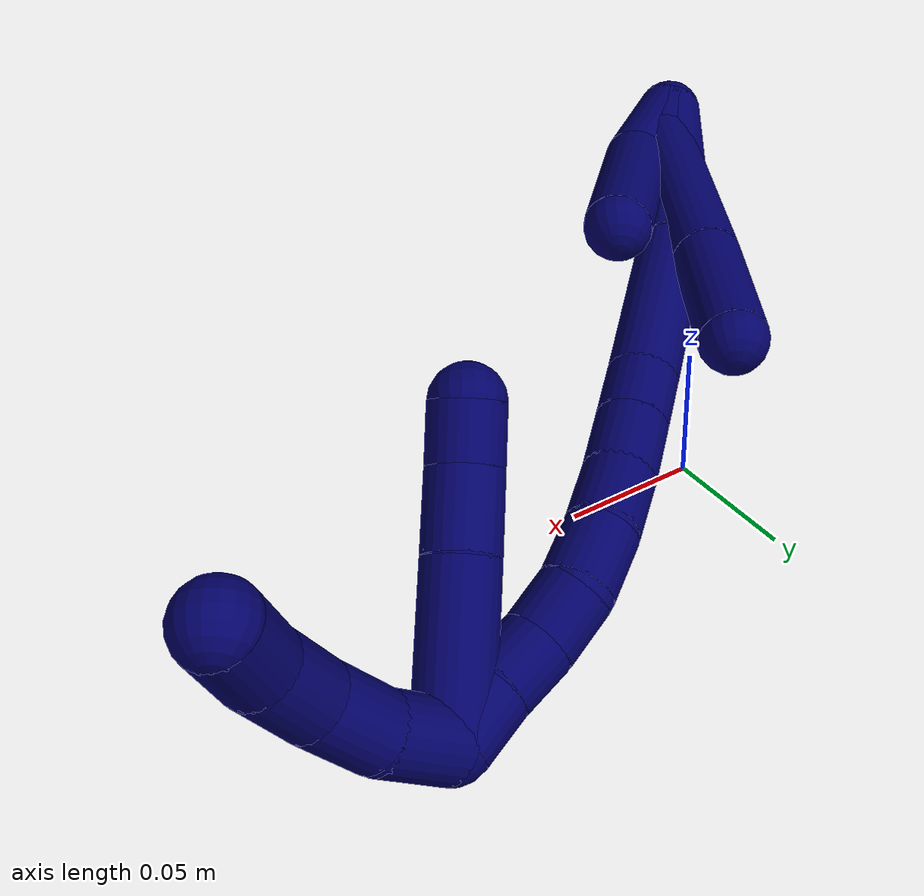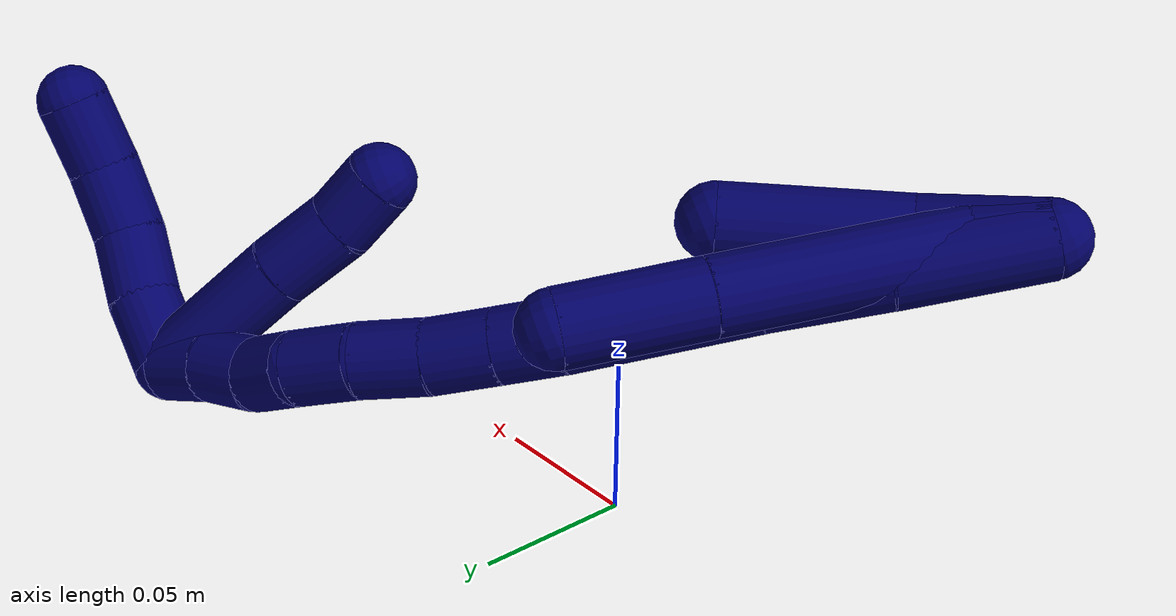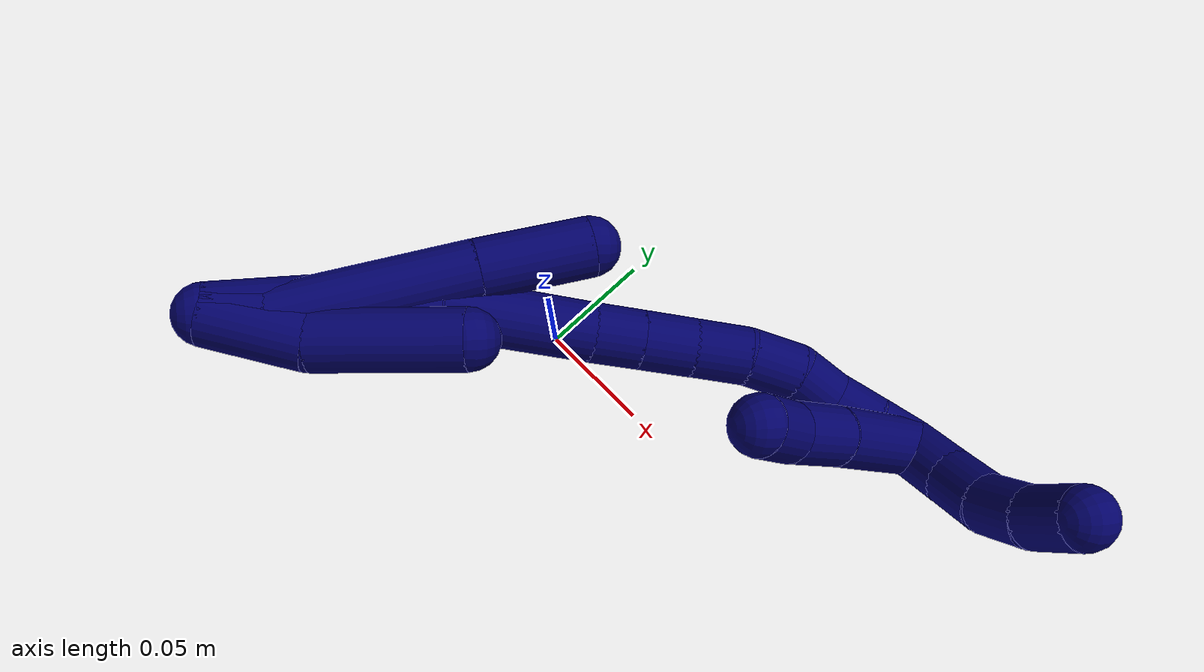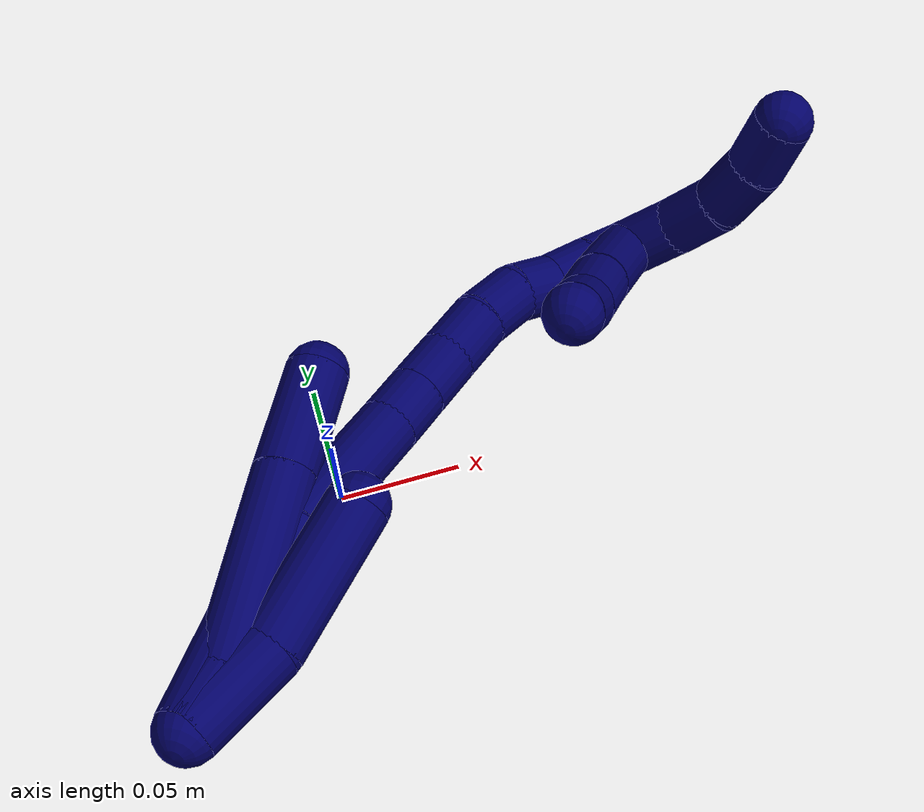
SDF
<sdf version="1.7">
 <world name="default">
  <model name="photoneo_s_sensor">
   <static>1</static>
   <pose>0 0 2 1.57079 1.57079 3.14159</pose>
   <link name="link">
    <inertial><mass>0.1</mass></inertial>
    <sensor name="sensor" type="depth">
     <update_rate>30</update_rate>
     <camera>
      <horizontal_fov>1.22</horizontal_fov>
      <image><width>1920</width><height>1200</height><format>B8G8R8</format></image>
      <clip><near>0.1</near><far>4</far></clip>
      <depth_camera><output>points</output></depth_camera>
     </camera>
     <plugin name="camera_plugin" filename="libgazebo_ros_depth_camera.so">
      <baseline>0.2</baseline>
      <alwaysOn>1</alwaysOn>
      <updateRate>0.0</updateRate>
      <cameraName>camera_ir</cameraName>
      <imageTopicName>/camera/color/image_raw</imageTopicName>
      <cameraInfoTopicName>/camera/color/camera_info</cameraInfoTopicName>
      <depthImageTopicName>/camera/depth/image_raw</depthImageTopicName>
      <depthImageCameraInfoTopicName>/camera/depth/camera_info</depthImageCameraInfoTopicName>
      <pointCloudTopicName>/camera/depth/points</pointCloudTopicName>
      <frameName>fr_optical</frameName>
      <pointCloudCutoff>0.1</pointCloudCutoff>
      <pointCloudCutoffMax>2.0</pointCloudCutoffMax>
      <distortionK1>0</distortionK1>
      <distortionK2>0</distortionK2>
      <distortionK3>0</distortionK3>
      <distortionT1>0</distortionT1>
      <distortionT2>0</distortionT2>
      <CxPrime>0</CxPrime>
      <Cx>0</Cx>
      <Cy>0</Cy>
      <focalLength>0</focalLength>
      <hackBaseline>0</hackBaseline>
     </plugin>
    </sensor>
   </link>
  </model>
  <model name="bin">
   <static>1</static>
   <link name="bottom">
    <collision name="collision-bottom">
     <pose>0 0 -0.01 0 -0 0</pose>
     <geometry><box><size>0.8 0.6 0.02</size></box></geometry>
     <surface>
      <friction><ode><mu>100</mu><mu2>100</mu2></ode></friction>
      <contact><collide_bitmask>65535</collide_bitmask></contact>
     </surface>
    </collision>
   </link>
   <link name="west_wall">
    <collision name="collision-west_wall">
     <pose>-0.41 0 0.1 0 -0 0</pose>
     <geometry><box><size>0.02 0.6 0.2</size></box></geometry>
     <surface>
      <friction><ode><mu>100</mu><mu2>100</mu2></ode></friction>
      <contact><collide_bitmask>65535</collide_bitmask></contact>
     </surface>
    </collision>
   </link>
   <link name="east_wall">
    <collision name="collision-east_wall">
     <pose>0.41 0 0.1 0 -0 0</pose>
     <geometry><box><size>0.02 0.6 0.2</size></box></geometry>
     <surface>
      <friction><ode><mu>100</mu><mu2>100</mu2></ode></friction>
      <contact><collide_bitmask>65535</collide_bitmask></contact>
     </surface>
    </collision>
   </link>
   <link name="south_wall">
    <collision name="collision-south_wall">
     <pose>0 -0.31 0.1 0 -0 0</pose>
     <geometry><box><size>0.8 0.02 0.2</size></box></geometry>
     <surface>
      <friction><ode><mu>100</mu><mu2>100</mu2></ode></friction>
      <contact><collide_bitmask>65535</collide_bitmask></contact>
     </surface>
    </collision>
   </link>
   <link name="north_wall">
    <collision name="collision-north_wall">
     <pose>0 0.31 0.1 0 -0 0</pose>
     <geometry><box><size>0.8 0.02 0.2</size></box></geometry>
     <surface>
      <friction><ode><mu>100</mu><mu2>100</mu2></ode></friction>
      <contact><collide_bitmask>65535</collide_bitmask></contact>
     </surface>
    </collision>
   </link>
  </model>
  <model name="7">
   <static>0</static>
   <link name="7">
    <collision name="collision-cylinder-e_1_2_8">
     <pose>0.001123 0.003477 -0.011085 -2.83764 0.096388 -0.61016</pose>
     <geometry><cylinder><radius>0.0125</radius><length>0.023344</length></cylinder></geometry>
     <surface>
      <friction><ode><mu>1.16</mu><mu2>1.16</mu2><slip1>0</slip1><slip2>0</slip2></ode></friction>
      <contact><ode><kp>1e+06</kp><kd>1</kd><max_vel>0</max_vel><min_depth>0.001</min_depth></ode></contact>
     </surface>
    </collision>
    <visual name="visual-cylinder-e_1_2_8">
     <pose>0.001123 0.003477 -0.011085 -2.83764 0.096388 -0.61016</pose>
     <geometry><cylinder><radius>0.0125</radius><length>0.023344</length></cylinder></geometry>
     <material><ambient>0.003922 0 0.403922 1</ambient></material>
    </visual>
    <collision name="collision-cylinder-e_2_8_9">
     <pose>-0.005628 0.015084 -0.06082 -2.93428 -0.196808 1.51847</pose>
     <geometry><cylinder><radius>0.0125</radius><length>0.080545</length></cylinder></geometry>
     <surface>
      <friction><ode><mu>1.16</mu><mu2>1.16</mu2><slip1>0</slip1><slip2>0</slip2></ode></friction>
      <contact><ode><kp>1e+06</kp><kd>1</kd><max_vel>0</max_vel><min_depth>0.001</min_depth></ode></contact>
     </surface>
    </collision>
    <visual name="visual-cylinder-e_2_8_9">
     <pose>-0.005628 0.015084 -0.06082 -2.93428 -0.196808 1.51847</pose>
     <geometry><cylinder><radius>0.0125</radius><length>0.080545</length></cylinder></geometry>
     <material><ambient>0.003922 0 0.403922 1</ambient></material>
    </visual>
    <collision name="collision-cylinder-e_3_9_6">
     <pose>-0.017418 0.027734 -0.121736 -2.94127 -0.170627 1.41012</pose>
     <geometry><cylinder><radius>0.0125</radius><length>0.046111</length></cylinder></geometry>
     <surface>
      <friction><ode><mu>1.16</mu><mu2>1.16</mu2><slip1>0</slip1><slip2>0</slip2></ode></friction>
      <contact><ode><kp>1e+06</kp><kd>1</kd><max_vel>0</max_vel><min_depth>0.001</min_depth></ode></contact>
     </surface>
    </collision>
    <visual name="visual-cylinder-e_3_9_6">
     <pose>-0.017418 0.027734 -0.121736 -2.94127 -0.170627 1.41012</pose>
     <geometry><cylinder><radius>0.0125</radius><length>0.046111</length></cylinder></geometry>
     <material><ambient>0.003922 0 0.403922 1</ambient></material>
    </visual>
    <collision name="collision-cylinder-e_1_2_10">
     <pose>0.005599 0.007539 -0.017628 -2.73747 0.284115 -1.21898</pose>
     <geometry><cylinder><radius>0.0125</radius><length>0.039946</length></cylinder></geometry>
     <surface>
      <friction><ode><mu>1.16</mu><mu2>1.16</mu2><slip1>0</slip1><slip2>0</slip2></ode></friction>
      <contact><ode><kp>1e+06</kp><kd>1</kd><max_vel>0</max_vel><min_depth>0.001</min_depth></ode></contact>
     </surface>
    </collision>
    <visual name="visual-cylinder-e_1_2_10">
     <pose>0.005599 0.007539 -0.017628 -2.73747 0.284115 -1.21898</pose>
     <geometry><cylinder><radius>0.0125</radius><length>0.039946</length></cylinder></geometry>
     <material><ambient>0.003922 0 0.403922 1</ambient></material>
    </visual>
    <collision name="collision-cylinder-e_2_10_5">
     <pose>0.012141 0.028104 -0.062294 -2.69262 0.031444 -0.137506</pose>
     <geometry><cylinder><radius>0.0125</radius><length>0.060054</length></cylinder></geometry>
     <surface>
      <friction><ode><mu>1.16</mu><mu2>1.16</mu2><slip1>0</slip1><slip2>0</slip2></ode></friction>
      <contact><ode><kp>1e+06</kp><kd>1</kd><max_vel>0</max_vel><min_depth>0.001</min_depth></ode></contact>
     </surface>
    </collision>
    <visual name="visual-cylinder-e_2_10_5">
     <pose>0.012141 0.028104 -0.062294 -2.69262 0.031444 -0.137506</pose>
     <geometry><cylinder><radius>0.0125</radius><length>0.060054</length></cylinder></geometry>
     <material><ambient>0.003922 0 0.403922 1</ambient></material>
    </visual>
    <collision name="collision-cylinder-e_1_2_11">
     <pose>-0.00084 0.004767 -0.023838 -2.94423 -0.034534 0.345372</pose>
     <geometry><cylinder><radius>0.0125</radius><length>0.048648</length></cylinder></geometry>
     <surface>
      <friction><ode><mu>1.16</mu><mu2>1.16</mu2><slip1>0</slip1><slip2>0</slip2></ode></friction>
      <contact><ode><kp>1e+06</kp><kd>1</kd><max_vel>0</max_vel><min_depth>0.001</min_depth></ode></contact>
     </surface>
    </collision>
    <visual name="visual-cylinder-e_1_2_11">
     <pose>-0.00084 0.004767 -0.023838 -2.94423 -0.034534 0.345372</pose>
     <geometry><cylinder><radius>0.0125</radius><length>0.048648</length></cylinder></geometry>
     <material><ambient>0.003922 0 0.403922 1</ambient></material>
    </visual>
    <collision name="collision-cylinder-e_2_11_12">
     <pose>-0.000579 0.013429 -0.066586 -2.93846 0.056956 -0.54509</pose>
     <geometry><cylinder><radius>0.0125</radius><length>0.038678</length></cylinder></geometry>
     <surface>
      <friction><ode><mu>1.16</mu><mu2>1.16</mu2><slip1>0</slip1><slip2>0</slip2></ode></friction>
      <contact><ode><kp>1e+06</kp><kd>1</kd><max_vel>0</max_vel><min_depth>0.001</min_depth></ode></contact>
     </surface>
    </collision>
    <visual name="visual-cylinder-e_2_11_12">
     <pose>-0.000579 0.013429 -0.066586 -2.93846 0.056956 -0.54509</pose>
     <geometry><cylinder><radius>0.0125</radius><length>0.038678</length></cylinder></geometry>
     <material><ambient>0.003922 0 0.403922 1</ambient></material>
    </visual>
    <collision name="collision-cylinder-e_3_12_13">
     <pose>0.006883 0.021756 -0.115441 -2.99466 0.207137 -1.90931</pose>
     <geometry><cylinder><radius>0.0125</radius><length>0.061864</length></cylinder></geometry>
     <surface>
      <friction><ode><mu>1.16</mu><mu2>1.16</mu2><slip1>0</slip1><slip2>0</slip2></ode></friction>
      <contact><ode><kp>1e+06</kp><kd>1</kd><max_vel>0</max_vel><min_depth>0.001</min_depth></ode></contact>
     </surface>
    </collision>
    <visual name="visual-cylinder-e_3_12_13">
     <pose>0.006883 0.021756 -0.115441 -2.99466 0.207137 -1.90931</pose>
     <geometry><cylinder><radius>0.0125</radius><length>0.061864</length></cylinder></geometry>
     <material><ambient>0.003922 0 0.403922 1</ambient></material>
    </visual>
    <collision name="collision-cylinder-e_4_13_14">
     <pose>0.015223 0.028179 -0.155399 -2.94526 0.19136 -1.54498</pose>
     <geometry><cylinder><radius>0.0125</radius><length>0.020798</length></cylinder></geometry>
     <surface>
      <friction><ode><mu>1.16</mu><mu2>1.16</mu2><slip1>0</slip1><slip2>0</slip2></ode></friction>
      <contact><ode><kp>1e+06</kp><kd>1</kd><max_vel>0</max_vel><min_depth>0.001</min_depth></ode></contact>
     </surface>
    </collision>
    <visual name="visual-cylinder-e_4_13_14">
     <pose>0.015223 0.028179 -0.155399 -2.94526 0.19136 -1.54498</pose>
     <geometry><cylinder><radius>0.0125</radius><length>0.020798</length></cylinder></geometry>
     <material><ambient>0.003922 0 0.403922 1</ambient></material>
    </visual>
    <collision name="collision-cylinder-e_5_14_15">
     <pose>0.019403 0.032405 -0.17639 -2.94078 0.194117 -1.53668</pose>
     <geometry><cylinder><radius>0.0125</radius><length>0.022835</length></cylinder></geometry>
     <surface>
      <friction><ode><mu>1.16</mu><mu2>1.16</mu2><slip1>0</slip1><slip2>0</slip2></ode></friction>
      <contact><ode><kp>1e+06</kp><kd>1</kd><max_vel>0</max_vel><min_depth>0.001</min_depth></ode></contact>
     </surface>
    </collision>
    <visual name="visual-cylinder-e_5_14_15">
     <pose>0.019403 0.032405 -0.17639 -2.94078 0.194117 -1.53668</pose>
     <geometry><cylinder><radius>0.0125</radius><length>0.022835</length></cylinder></geometry>
     <material><ambient>0.003922 0 0.403922 1</ambient></material>
    </visual>
    <collision name="collision-cylinder-e_6_15_16">
     <pose>0.023915 0.038079 -0.198448 -2.84064 0.196535 -1.15302</pose>
     <geometry><cylinder><radius>0.0125</radius><length>0.023659</length></cylinder></geometry>
     <surface>
      <friction><ode><mu>1.16</mu><mu2>1.16</mu2><slip1>0</slip1><slip2>0</slip2></ode></friction>
      <contact><ode><kp>1e+06</kp><kd>1</kd><max_vel>0</max_vel><min_depth>0.001</min_depth></ode></contact>
     </surface>
    </collision>
    <visual name="visual-cylinder-e_6_15_16">
     <pose>0.023915 0.038079 -0.198448 -2.84064 0.196535 -1.15302</pose>
     <geometry><cylinder><radius>0.0125</radius><length>0.023659</length></cylinder></geometry>
     <material><ambient>0.003922 0 0.403922 1</ambient></material>
    </visual>
    <collision name="collision-cylinder-e_7_16_17">
     <pose>0.030167 0.043819 -0.219968 -2.92463 0.35323 -2.04579</pose>
     <geometry><cylinder><radius>0.0125</radius><length>0.022786</length></cylinder></geometry>
     <surface>
      <friction><ode><mu>1.16</mu><mu2>1.16</mu2><slip1>0</slip1><slip2>0</slip2></ode></friction>
      <contact><ode><kp>1e+06</kp><kd>1</kd><max_vel>0</max_vel><min_depth>0.001</min_depth></ode></contact>
     </surface>
    </collision>
    <visual name="visual-cylinder-e_7_16_17">
     <pose>0.030167 0.043819 -0.219968 -2.92463 0.35323 -2.04579</pose>
     <geometry><cylinder><radius>0.0125</radius><length>0.022786</length></cylinder></geometry>
     <material><ambient>0.003922 0 0.403922 1</ambient></material>
    </visual>
    <collision name="collision-cylinder-e_8_17_18">
     <pose>0.040322 0.047234 -0.238294 -3.00134 0.66253 -2.73867</pose>
     <geometry><cylinder><radius>0.0125</radius><length>0.020206</length></cylinder></geometry>
     <surface>
      <friction><ode><mu>1.16</mu><mu2>1.16</mu2><slip1>0</slip1><slip2>0</slip2></ode></friction>
      <contact><ode><kp>1e+06</kp><kd>1</kd><max_vel>0</max_vel><min_depth>0.001</min_depth></ode></contact>
     </surface>
    </collision>
    <visual name="visual-cylinder-e_8_17_18">
     <pose>0.040322 0.047234 -0.238294 -3.00134 0.66253 -2.73867</pose>
     <geometry><cylinder><radius>0.0125</radius><length>0.020206</length></cylinder></geometry>
     <material><ambient>0.003922 0 0.403922 1</ambient></material>
    </visual>
    <collision name="collision-cylinder-e_9_18_19">
     <pose>0.052109 0.052273 -0.25385 -2.66843 0.574175 -1.77202</pose>
     <geometry><cylinder><radius>0.0125</radius><length>0.02052</length></cylinder></geometry>
     <surface>
      <friction><ode><mu>1.16</mu><mu2>1.16</mu2><slip1>0</slip1><slip2>0</slip2></ode></friction>
      <contact><ode><kp>1e+06</kp><kd>1</kd><max_vel>0</max_vel><min_depth>0.001</min_depth></ode></contact>
     </surface>
    </collision>
    <visual name="visual-cylinder-e_9_18_19">
     <pose>0.052109 0.052273 -0.25385 -2.66843 0.574175 -1.77202</pose>
     <geometry><cylinder><radius>0.0125</radius><length>0.02052</length></cylinder></geometry>
     <material><ambient>0.003922 0 0.403922 1</ambient></material>
    </visual>
    <collision name="collision-cylinder-e_10_19_1">
     <pose>0.063089 0.058803 -0.26952 -2.82697 0.571026 -2.15072</pose>
     <geometry><cylinder><radius>0.0125</radius><length>0.020006</length></cylinder></geometry>
     <surface>
      <friction><ode><mu>1.16</mu><mu2>1.16</mu2><slip1>0</slip1><slip2>0</slip2></ode></friction>
      <contact><ode><kp>1e+06</kp><kd>1</kd><max_vel>0</max_vel><min_depth>0.001</min_depth></ode></contact>
     </surface>
    </collision>
    <visual name="visual-cylinder-e_10_19_1">
     <pose>0.063089 0.058803 -0.26952 -2.82697 0.571026 -2.15072</pose>
     <geometry><cylinder><radius>0.0125</radius><length>0.020006</length></cylinder></geometry>
     <material><ambient>0.003922 0 0.403922 1</ambient></material>
    </visual>
    <collision name="collision-cylinder-e_1_1_20">
     <pose>0.073877 0.073042 -0.278814 -1.68126 0.430932 -0.479556</pose>
     <geometry><cylinder><radius>0.0125</radius><length>0.025767</length></cylinder></geometry>
     <surface>
      <friction><ode><mu>1.16</mu><mu2>1.16</mu2><slip1>0</slip1><slip2>0</slip2></ode></friction>
      <contact><ode><kp>1e+06</kp><kd>1</kd><max_vel>0</max_vel><min_depth>0.001</min_depth></ode></contact>
     </surface>
    </collision>
    <visual name="visual-cylinder-e_1_1_20">
     <pose>0.073877 0.073042 -0.278814 -1.68126 0.430932 -0.479556</pose>
     <geometry><cylinder><radius>0.0125</radius><length>0.025767</length></cylinder></geometry>
     <material><ambient>0.003922 0 0.403922 1</ambient></material>
    </visual>
    <collision name="collision-cylinder-e_2_20_21">
     <pose>0.082864 0.096372 -0.278948 -1.47228 0.297659 -0.270046</pose>
     <geometry><cylinder><radius>0.0125</radius><length>0.024588</length></cylinder></geometry>
     <surface>
      <friction><ode><mu>1.16</mu><mu2>1.16</mu2><slip1>0</slip1><slip2>0</slip2></ode></friction>
      <contact><ode><kp>1e+06</kp><kd>1</kd><max_vel>0</max_vel><min_depth>0.001</min_depth></ode></contact>
     </surface>
    </collision>
    <visual name="visual-cylinder-e_2_20_21">
     <pose>0.082864 0.096372 -0.278948 -1.47228 0.297659 -0.270046</pose>
     <geometry><cylinder><radius>0.0125</radius><length>0.024588</length></cylinder></geometry>
     <material><ambient>0.003922 0 0.403922 1</ambient></material>
    </visual>
    <collision name="collision-cylinder-e_3_21_22">
     <pose>0.08711 0.120419 -0.277505 -1.54752 0.051784 -0.050593</pose>
     <geometry><cylinder><radius>0.0125</radius><length>0.02474</length></cylinder></geometry>
     <surface>
      <friction><ode><mu>1.16</mu><mu2>1.16</mu2><slip1>0</slip1><slip2>0</slip2></ode></friction>
      <contact><ode><kp>1e+06</kp><kd>1</kd><max_vel>0</max_vel><min_depth>0.001</min_depth></ode></contact>
     </surface>
    </collision>
    <visual name="visual-cylinder-e_3_21_22">
     <pose>0.08711 0.120419 -0.277505 -1.54752 0.051784 -0.050593</pose>
     <geometry><cylinder><radius>0.0125</radius><length>0.02474</length></cylinder></geometry>
     <material><ambient>0.003922 0 0.403922 1</ambient></material>
    </visual>
    <collision name="collision-cylinder-e_4_22_4">
     <pose>0.085748 0.145059 -0.27706 -1.55802 -0.161426 0.159385</pose>
     <geometry><cylinder><radius>0.0125</radius><length>0.024906</length></cylinder></geometry>
     <surface>
      <friction><ode><mu>1.16</mu><mu2>1.16</mu2><slip1>0</slip1><slip2>0</slip2></ode></friction>
      <contact><ode><kp>1e+06</kp><kd>1</kd><max_vel>0</max_vel><min_depth>0.001</min_depth></ode></contact>
     </surface>
    </collision>
    <visual name="visual-cylinder-e_4_22_4">
     <pose>0.085748 0.145059 -0.27706 -1.55802 -0.161426 0.159385</pose>
     <geometry><cylinder><radius>0.0125</radius><length>0.024906</length></cylinder></geometry>
     <material><ambient>0.003922 0 0.403922 1</ambient></material>
    </visual>
    <collision name="collision-cylinder-e_1_1_23">
     <pose>0.063294 0.069229 -0.252878 -0.307299 -0.198491 0.030839</pose>
     <geometry><cylinder><radius>0.0125</radius><length>0.052748</length></cylinder></geometry>
     <surface>
      <friction><ode><mu>1.16</mu><mu2>1.16</mu2><slip1>0</slip1><slip2>0</slip2></ode></friction>
      <contact><ode><kp>1e+06</kp><kd>1</kd><max_vel>0</max_vel><min_depth>0.001</min_depth></ode></contact>
     </surface>
    </collision>
    <visual name="visual-cylinder-e_1_1_23">
     <pose>0.063294 0.069229 -0.252878 -0.307299 -0.198491 0.030839</pose>
     <geometry><cylinder><radius>0.0125</radius><length>0.052748</length></cylinder></geometry>
     <material><ambient>0.003922 0 0.403922 1</ambient></material>
    </visual>
    <collision name="collision-cylinder-e_2_23_24">
     <pose>0.055888 0.080328 -0.215322 -0.248651 -0.16409 0.020552</pose>
     <geometry><cylinder><radius>0.0125</radius><length>0.027005</length></cylinder></geometry>
     <surface>
      <friction><ode><mu>1.16</mu><mu2>1.16</mu2><slip1>0</slip1><slip2>0</slip2></ode></friction>
      <contact><ode><kp>1e+06</kp><kd>1</kd><max_vel>0</max_vel><min_depth>0.001</min_depth></ode></contact>
     </surface>
    </collision>
    <visual name="visual-cylinder-e_2_23_24">
     <pose>0.055888 0.080328 -0.215322 -0.248651 -0.16409 0.020552</pose>
     <geometry><cylinder><radius>0.0125</radius><length>0.027005</length></cylinder></geometry>
     <material><ambient>0.003922 0 0.403922 1</ambient></material>
    </visual>
    <collision name="collision-cylinder-e_3_24_3">
     <pose>0.051317 0.087704 -0.19346 -0.42932 -0.235835 0.051645</pose>
     <geometry><cylinder><radius>0.0125</radius><length>0.020246</length></cylinder></geometry>
     <surface>
      <friction><ode><mu>1.16</mu><mu2>1.16</mu2><slip1>0</slip1><slip2>0</slip2></ode></friction>
      <contact><ode><kp>1e+06</kp><kd>1</kd><max_vel>0</max_vel><min_depth>0.001</min_depth></ode></contact>
     </surface>
    </collision>
    <visual name="visual-cylinder-e_3_24_3">
     <pose>0.051317 0.087704 -0.19346 -0.42932 -0.235835 0.051645</pose>
     <geometry><cylinder><radius>0.0125</radius><length>0.020246</length></cylinder></geometry>
     <material><ambient>0.003922 0 0.403922 1</ambient></material>
    </visual>
    <collision name="collision-sphere-3">
     <pose>0.048951 0.091801 -0.184511 0 -0 0</pose>
     <geometry><sphere><radius>0.0125</radius></sphere></geometry>
     <surface>
      <friction><ode><mu>1.16</mu><mu2>1.16</mu2><slip1>0</slip1><slip2>0</slip2></ode></friction>
      <contact><ode><kp>1e+06</kp><kd>1</kd><max_vel>0</max_vel><min_depth>0.001</min_depth></ode></contact>
     </surface>
    </collision>
    <visual name="visual-sphere-3">
     <pose>0.048951 0.091801 -0.184511 0 -0 0</pose>
     <geometry><sphere><radius>0.0125</radius></sphere></geometry>
     <material><ambient>0.003922 0 0.403922 1</ambient></material>
    </visual>
    <collision name="collision-sphere-24">
     <pose>0.053682 0.083607 -0.20241 0 -0 0</pose>
     <geometry><sphere><radius>0.0125</radius></sphere></geometry>
     <surface>
      <friction><ode><mu>1.16</mu><mu2>1.16</mu2><slip1>0</slip1><slip2>0</slip2></ode></friction>
      <contact><ode><kp>1e+06</kp><kd>1</kd><max_vel>0</max_vel><min_depth>0.001</min_depth></ode></contact>
     </surface>
    </collision>
    <visual name="visual-sphere-24">
     <pose>0.053682 0.083607 -0.20241 0 -0 0</pose>
     <geometry><sphere><radius>0.0125</radius></sphere></geometry>
     <material><ambient>0.003922 0 0.403922 1</ambient></material>
    </visual>
    <collision name="collision-sphere-23">
     <pose>0.058094 0.07705 -0.228233 0 -0 0</pose>
     <geometry><sphere><radius>0.0125</radius></sphere></geometry>
     <surface>
      <friction><ode><mu>1.16</mu><mu2>1.16</mu2><slip1>0</slip1><slip2>0</slip2></ode></friction>
      <contact><ode><kp>1e+06</kp><kd>1</kd><max_vel>0</max_vel><min_depth>0.001</min_depth></ode></contact>
     </surface>
    </collision>
    <visual name="visual-sphere-23">
     <pose>0.058094 0.07705 -0.228233 0 -0 0</pose>
     <geometry><sphere><radius>0.0125</radius></sphere></geometry>
     <material><ambient>0.003922 0 0.403922 1</ambient></material>
    </visual>
    <collision name="collision-sphere-4">
     <pose>0.083747 0.157349 -0.276903 0 -0 0</pose>
     <geometry><sphere><radius>0.0125</radius></sphere></geometry>
     <surface>
      <friction><ode><mu>1.16</mu><mu2>1.16</mu2><slip1>0</slip1><slip2>0</slip2></ode></friction>
      <contact><ode><kp>1e+06</kp><kd>1</kd><max_vel>0</max_vel><min_depth>0.001</min_depth></ode></contact>
     </surface>
    </collision>
    <visual name="visual-sphere-4">
     <pose>0.083747 0.157349 -0.276903 0 -0 0</pose>
     <geometry><sphere><radius>0.0125</radius></sphere></geometry>
     <material><ambient>0.003922 0 0.403922 1</ambient></material>
    </visual>
    <collision name="collision-sphere-22">
     <pose>0.08775 0.132769 -0.277217 0 -0 0</pose>
     <geometry><sphere><radius>0.0125</radius></sphere></geometry>
     <surface>
      <friction><ode><mu>1.16</mu><mu2>1.16</mu2><slip1>0</slip1><slip2>0</slip2></ode></friction>
      <contact><ode><kp>1e+06</kp><kd>1</kd><max_vel>0</max_vel><min_depth>0.001</min_depth></ode></contact>
     </surface>
    </collision>
    <visual name="visual-sphere-22">
     <pose>0.08775 0.132769 -0.277217 0 -0 0</pose>
     <geometry><sphere><radius>0.0125</radius></sphere></geometry>
     <material><ambient>0.003922 0 0.403922 1</ambient></material>
    </visual>
    <collision name="collision-sphere-21">
     <pose>0.086469 0.108069 -0.277792 0 -0 0</pose>
     <geometry><sphere><radius>0.0125</radius></sphere></geometry>
     <surface>
      <friction><ode><mu>1.16</mu><mu2>1.16</mu2><slip1>0</slip1><slip2>0</slip2></ode></friction>
      <contact><ode><kp>1e+06</kp><kd>1</kd><max_vel>0</max_vel><min_depth>0.001</min_depth></ode></contact>
     </surface>
    </collision>
    <visual name="visual-sphere-21">
     <pose>0.086469 0.108069 -0.277792 0 -0 0</pose>
     <geometry><sphere><radius>0.0125</radius></sphere></geometry>
     <material><ambient>0.003922 0 0.403922 1</ambient></material>
    </visual>
    <collision name="collision-sphere-20">
     <pose>0.079258 0.084676 -0.280104 0 -0 0</pose>
     <geometry><sphere><radius>0.0125</radius></sphere></geometry>
     <surface>
      <friction><ode><mu>1.16</mu><mu2>1.16</mu2><slip1>0</slip1><slip2>0</slip2></ode></friction>
      <contact><ode><kp>1e+06</kp><kd>1</kd><max_vel>0</max_vel><min_depth>0.001</min_depth></ode></contact>
     </surface>
    </collision>
    <visual name="visual-sphere-20">
     <pose>0.079258 0.084676 -0.280104 0 -0 0</pose>
     <geometry><sphere><radius>0.0125</radius></sphere></geometry>
     <material><ambient>0.003922 0 0.403922 1</ambient></material>
    </visual>
    <collision name="collision-sphere-5">
     <pose>0.013085 0.04113 -0.089331 0 -0 0</pose>
     <geometry><sphere><radius>0.0125</radius></sphere></geometry>
     <surface>
      <friction><ode><mu>1.16</mu><mu2>1.16</mu2><slip1>0</slip1><slip2>0</slip2></ode></friction>
      <contact><ode><kp>1e+06</kp><kd>1</kd><max_vel>0</max_vel><min_depth>0.001</min_depth></ode></contact>
     </surface>
    </collision>
    <visual name="visual-sphere-5">
     <pose>0.013085 0.04113 -0.089331 0 -0 0</pose>
     <geometry><sphere><radius>0.0125</radius></sphere></geometry>
     <material><ambient>0.003922 0 0.403922 1</ambient></material>
    </visual>
    <collision name="collision-sphere-10">
     <pose>0.011197 0.015077 -0.035256 0 -0 0</pose>
     <geometry><sphere><radius>0.0125</radius></sphere></geometry>
     <surface>
      <friction><ode><mu>1.16</mu><mu2>1.16</mu2><slip1>0</slip1><slip2>0</slip2></ode></friction>
      <contact><ode><kp>1e+06</kp><kd>1</kd><max_vel>0</max_vel><min_depth>0.001</min_depth></ode></contact>
     </surface>
    </collision>
    <visual name="visual-sphere-10">
     <pose>0.011197 0.015077 -0.035256 0 -0 0</pose>
     <geometry><sphere><radius>0.0125</radius></sphere></geometry>
     <material><ambient>0.003922 0 0.403922 1</ambient></material>
    </visual>
    <collision name="collision-sphere-6">
     <pose>-0.021333 0.032255 -0.144002 0 -0 0</pose>
     <geometry><sphere><radius>0.0125</radius></sphere></geometry>
     <surface>
      <friction><ode><mu>1.16</mu><mu2>1.16</mu2><slip1>0</slip1><slip2>0</slip2></ode></friction>
      <contact><ode><kp>1e+06</kp><kd>1</kd><max_vel>0</max_vel><min_depth>0.001</min_depth></ode></contact>
     </surface>
    </collision>
    <visual name="visual-sphere-6">
     <pose>-0.021333 0.032255 -0.144002 0 -0 0</pose>
     <geometry><sphere><radius>0.0125</radius></sphere></geometry>
     <material><ambient>0.003922 0 0.403922 1</ambient></material>
    </visual>
    <collision name="collision-sphere-9">
     <pose>-0.013503 0.023213 -0.09947 0 -0 0</pose>
     <geometry><sphere><radius>0.0125</radius></sphere></geometry>
     <surface>
      <friction><ode><mu>1.16</mu><mu2>1.16</mu2><slip1>0</slip1><slip2>0</slip2></ode></friction>
      <contact><ode><kp>1e+06</kp><kd>1</kd><max_vel>0</max_vel><min_depth>0.001</min_depth></ode></contact>
     </surface>
    </collision>
    <visual name="visual-sphere-9">
     <pose>-0.013503 0.023213 -0.09947 0 -0 0</pose>
     <geometry><sphere><radius>0.0125</radius></sphere></geometry>
     <material><ambient>0.003922 0 0.403922 1</ambient></material>
    </visual>
    <collision name="collision-sphere-2">
     <geometry><sphere><radius>0.0125</radius></sphere></geometry>
     <surface>
      <friction><ode><mu>1.16</mu><mu2>1.16</mu2><slip1>0</slip1><slip2>0</slip2></ode></friction>
      <contact><ode><kp>1e+06</kp><kd>1</kd><max_vel>0</max_vel><min_depth>0.001</min_depth></ode></contact>
     </surface>
    </collision>
    <visual name="visual-sphere-2">
     <geometry><sphere><radius>0.0125</radius></sphere></geometry>
     <material><ambient>0.003922 0 0.403922 1</ambient></material>
    </visual>
    <collision name="collision-sphere-19">
     <pose>0.057682 0.056199 -0.261518 0 -0 0</pose>
     <geometry><sphere><radius>0.0125</radius></sphere></geometry>
     <surface>
      <friction><ode><mu>1.16</mu><mu2>1.16</mu2><slip1>0</slip1><slip2>0</slip2></ode></friction>
      <contact><ode><kp>1e+06</kp><kd>1</kd><max_vel>0</max_vel><min_depth>0.001</min_depth></ode></contact>
     </surface>
    </collision>
    <visual name="visual-sphere-19">
     <pose>0.057682 0.056199 -0.261518 0 -0 0</pose>
     <geometry><sphere><radius>0.0125</radius></sphere></geometry>
     <material><ambient>0.003922 0 0.403922 1</ambient></material>
    </visual>
    <collision name="collision-sphere-8">
     <pose>0.002247 0.006954 -0.022171 0 -0 0</pose>
     <geometry><sphere><radius>0.0125</radius></sphere></geometry>
     <surface>
      <friction><ode><mu>1.16</mu><mu2>1.16</mu2><slip1>0</slip1><slip2>0</slip2></ode></friction>
      <contact><ode><kp>1e+06</kp><kd>1</kd><max_vel>0</max_vel><min_depth>0.001</min_depth></ode></contact>
     </surface>
    </collision>
    <visual name="visual-sphere-8">
     <pose>0.002247 0.006954 -0.022171 0 -0 0</pose>
     <geometry><sphere><radius>0.0125</radius></sphere></geometry>
     <material><ambient>0.003922 0 0.403922 1</ambient></material>
    </visual>
    <collision name="collision-sphere-11">
     <pose>-0.00168 0.009534 -0.047675 0 -0 0</pose>
     <geometry><sphere><radius>0.0125</radius></sphere></geometry>
     <surface>
      <friction><ode><mu>1.16</mu><mu2>1.16</mu2><slip1>0</slip1><slip2>0</slip2></ode></friction>
      <contact><ode><kp>1e+06</kp><kd>1</kd><max_vel>0</max_vel><min_depth>0.001</min_depth></ode></contact>
     </surface>
    </collision>
    <visual name="visual-sphere-11">
     <pose>-0.00168 0.009534 -0.047675 0 -0 0</pose>
     <geometry><sphere><radius>0.0125</radius></sphere></geometry>
     <material><ambient>0.003922 0 0.403922 1</ambient></material>
    </visual>
    <collision name="collision-sphere-12">
     <pose>0.000522 0.017324 -0.085497 0 -0 0</pose>
     <geometry><sphere><radius>0.0125</radius></sphere></geometry>
     <surface>
      <friction><ode><mu>1.16</mu><mu2>1.16</mu2><slip1>0</slip1><slip2>0</slip2></ode></friction>
      <contact><ode><kp>1e+06</kp><kd>1</kd><max_vel>0</max_vel><min_depth>0.001</min_depth></ode></contact>
     </surface>
    </collision>
    <visual name="visual-sphere-12">
     <pose>0.000522 0.017324 -0.085497 0 -0 0</pose>
     <geometry><sphere><radius>0.0125</radius></sphere></geometry>
     <material><ambient>0.003922 0 0.403922 1</ambient></material>
    </visual>
    <collision name="collision-sphere-13">
     <pose>0.013245 0.026187 -0.145386 0 -0 0</pose>
     <geometry><sphere><radius>0.0125</radius></sphere></geometry>
     <surface>
      <friction><ode><mu>1.16</mu><mu2>1.16</mu2><slip1>0</slip1><slip2>0</slip2></ode></friction>
      <contact><ode><kp>1e+06</kp><kd>1</kd><max_vel>0</max_vel><min_depth>0.001</min_depth></ode></contact>
     </surface>
    </collision>
    <visual name="visual-sphere-13">
     <pose>0.013245 0.026187 -0.145386 0 -0 0</pose>
     <geometry><sphere><radius>0.0125</radius></sphere></geometry>
     <material><ambient>0.003922 0 0.403922 1</ambient></material>
    </visual>
    <collision name="collision-sphere-14">
     <pose>0.017201 0.030171 -0.165412 0 -0 0</pose>
     <geometry><sphere><radius>0.0125</radius></sphere></geometry>
     <surface>
      <friction><ode><mu>1.16</mu><mu2>1.16</mu2><slip1>0</slip1><slip2>0</slip2></ode></friction>
      <contact><ode><kp>1e+06</kp><kd>1</kd><max_vel>0</max_vel><min_depth>0.001</min_depth></ode></contact>
     </surface>
    </collision>
    <visual name="visual-sphere-14">
     <pose>0.017201 0.030171 -0.165412 0 -0 0</pose>
     <geometry><sphere><radius>0.0125</radius></sphere></geometry>
     <material><ambient>0.003922 0 0.403922 1</ambient></material>
    </visual>
    <collision name="collision-sphere-15">
     <pose>0.021605 0.03464 -0.187368 0 -0 0</pose>
     <geometry><sphere><radius>0.0125</radius></sphere></geometry>
     <surface>
      <friction><ode><mu>1.16</mu><mu2>1.16</mu2><slip1>0</slip1><slip2>0</slip2></ode></friction>
      <contact><ode><kp>1e+06</kp><kd>1</kd><max_vel>0</max_vel><min_depth>0.001</min_depth></ode></contact>
     </surface>
    </collision>
    <visual name="visual-sphere-15">
     <pose>0.021605 0.03464 -0.187368 0 -0 0</pose>
     <geometry><sphere><radius>0.0125</radius></sphere></geometry>
     <material><ambient>0.003922 0 0.403922 1</ambient></material>
    </visual>
    <collision name="collision-sphere-16">
     <pose>0.026225 0.041518 -0.209529 0 -0 0</pose>
     <geometry><sphere><radius>0.0125</radius></sphere></geometry>
     <surface>
      <friction><ode><mu>1.16</mu><mu2>1.16</mu2><slip1>0</slip1><slip2>0</slip2></ode></friction>
      <contact><ode><kp>1e+06</kp><kd>1</kd><max_vel>0</max_vel><min_depth>0.001</min_depth></ode></contact>
     </surface>
    </collision>
    <visual name="visual-sphere-16">
     <pose>0.026225 0.041518 -0.209529 0 -0 0</pose>
     <geometry><sphere><radius>0.0125</radius></sphere></geometry>
     <material><ambient>0.003922 0 0.403922 1</ambient></material>
    </visual>
    <collision name="collision-sphere-17">
     <pose>0.034108 0.04612 -0.230407 0 -0 0</pose>
     <geometry><sphere><radius>0.0125</radius></sphere></geometry>
     <surface>
      <friction><ode><mu>1.16</mu><mu2>1.16</mu2><slip1>0</slip1><slip2>0</slip2></ode></friction>
      <contact><ode><kp>1e+06</kp><kd>1</kd><max_vel>0</max_vel><min_depth>0.001</min_depth></ode></contact>
     </surface>
    </collision>
    <visual name="visual-sphere-17">
     <pose>0.034108 0.04612 -0.230407 0 -0 0</pose>
     <geometry><sphere><radius>0.0125</radius></sphere></geometry>
     <material><ambient>0.003922 0 0.403922 1</ambient></material>
    </visual>
    <collision name="collision-sphere-18">
     <pose>0.046537 0.048348 -0.246181 0 -0 0</pose>
     <geometry><sphere><radius>0.0125</radius></sphere></geometry>
     <surface>
      <friction><ode><mu>1.16</mu><mu2>1.16</mu2><slip1>0</slip1><slip2>0</slip2></ode></friction>
      <contact><ode><kp>1e+06</kp><kd>1</kd><max_vel>0</max_vel><min_depth>0.001</min_depth></ode></contact>
     </surface>
    </collision>
    <visual name="visual-sphere-18">
     <pose>0.046537 0.048348 -0.246181 0 -0 0</pose>
     <geometry><sphere><radius>0.0125</radius></sphere></geometry>
     <material><ambient>0.003922 0 0.403922 1</ambient></material>
    </visual>
    <collision name="collision-sphere-1">
     <pose>0.068495 0.061408 -0.277523 0 -0 0</pose>
     <geometry><sphere><radius>0.0125</radius></sphere></geometry>
     <surface>
      <friction><ode><mu>1.16</mu><mu2>1.16</mu2><slip1>0</slip1><slip2>0</slip2></ode></friction>
      <contact><ode><kp>1e+06</kp><kd>1</kd><max_vel>0</max_vel><min_depth>0.001</min_depth></ode></contact>
     </surface>
    </collision>
    <visual name="visual-sphere-1">
     <pose>0.068495 0.061408 -0.277523 0 -0 0</pose>
     <geometry><sphere><radius>0.0125</radius></sphere></geometry>
     <material><ambient>0.003922 0 0.403922 1</ambient></material>
    </visual>
    <inertial>
     <pose>0.025817 0.04204 -0.145807 0 -0 0</pose>
     <mass>0.75</mass>
     <inertia><ixx>8.1e-05</ixx><ixy>0</ixy><ixz>0</ixz><iyy>2.6e-05</iyy><iyz>0</iyz><izz>-7.8e-05</izz></inertia>
    </inertial>
   </link>
   <pose>-0.072422 -0.10469 0.088324 1.15768 0.380094 -0.733178</pose>
  </model>
 </world>
</sdf>
